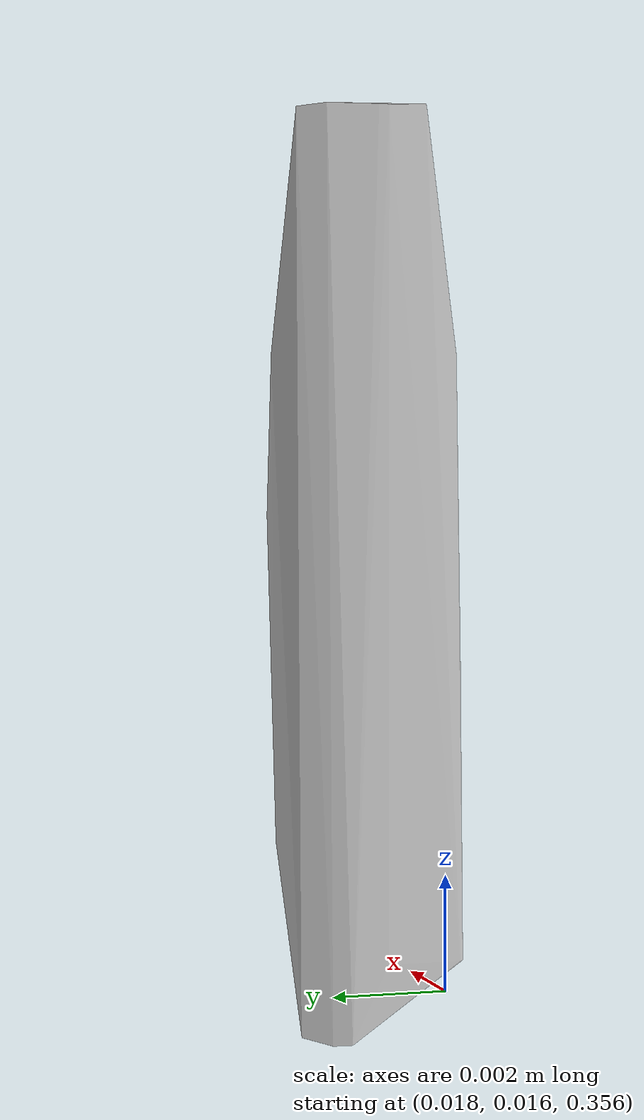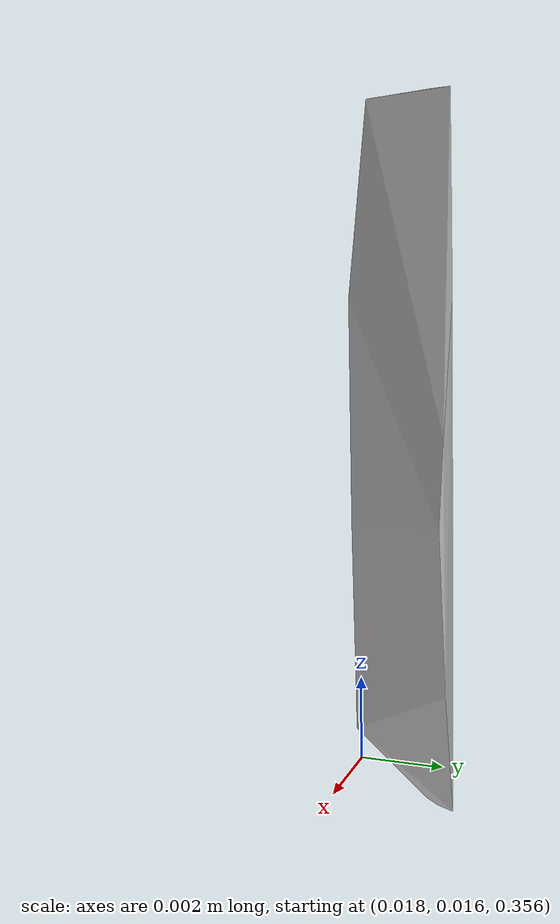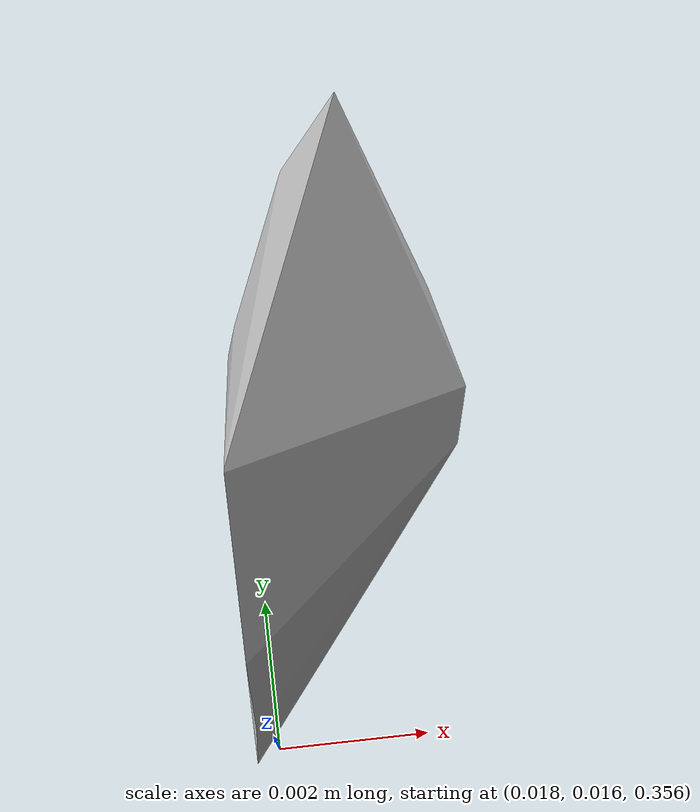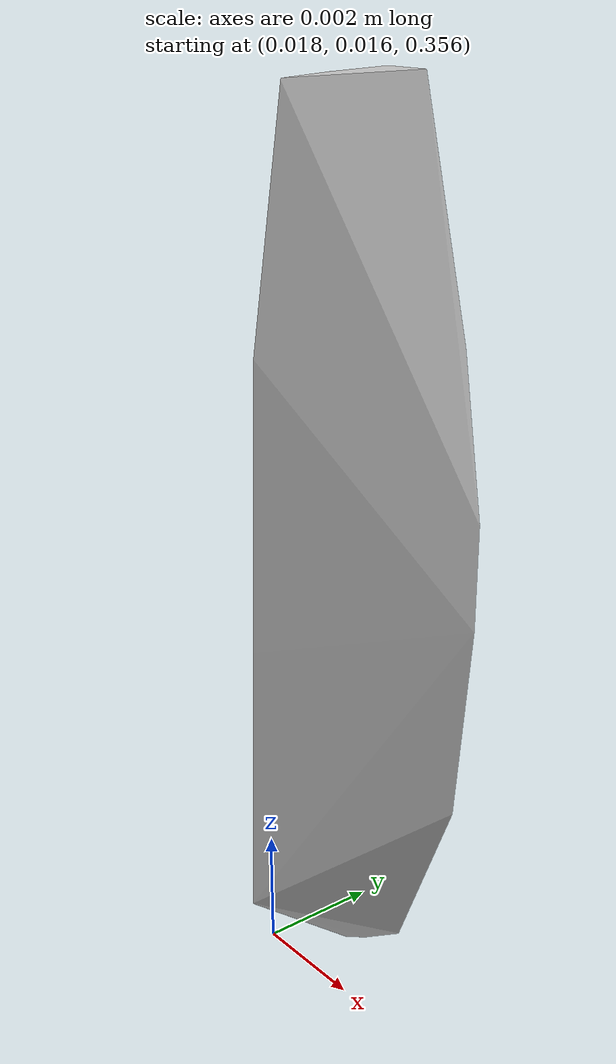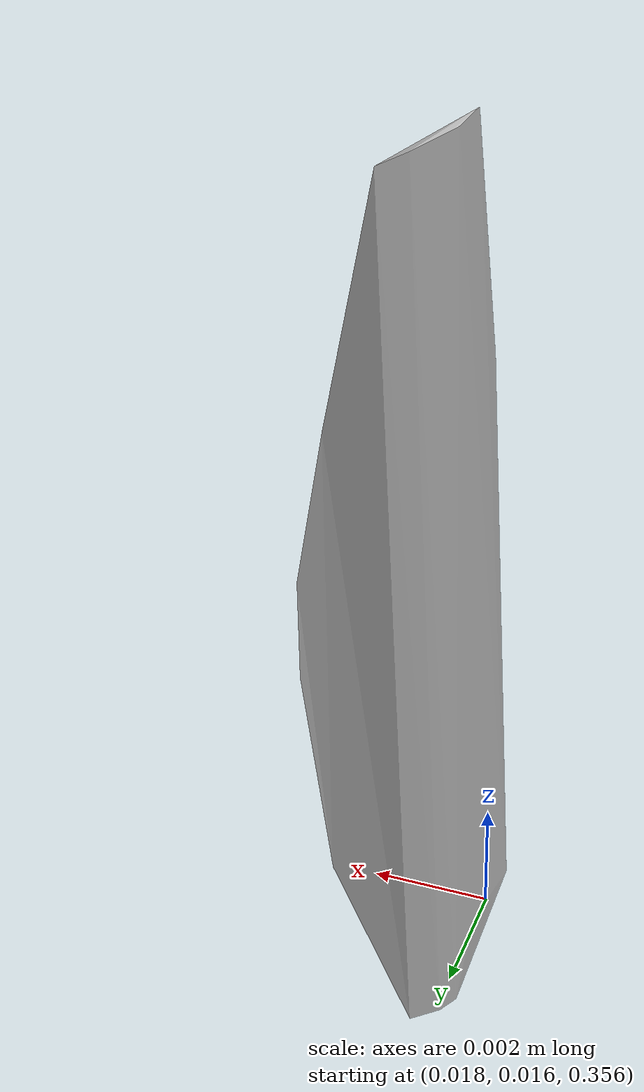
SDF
<?xml version="1.0"?>
<sdf version="1.7">
  <model name="vascular_partexport002">
    <link name="vascular_partexport002_body">
      <visual name="vascular_partexport002_visual">
        <geometry>
          <mesh>
            <uri>vascular_partexport002.obj</uri>
          </mesh>
        </geometry>
      </visual>
      <collision name="vascular_partexport002_collision">
        <geometry>
          <mesh>
            <uri>vascular_partexport002.obj</uri>
          </mesh>
        </geometry>
      </collision>
    </link>
    <frame name="vascular_partexport002_center">
      <pose relative_to="vascular_partexport002_body">0 0 0 0 0 0</pose>
    </frame>
  </model>
</sdf>
